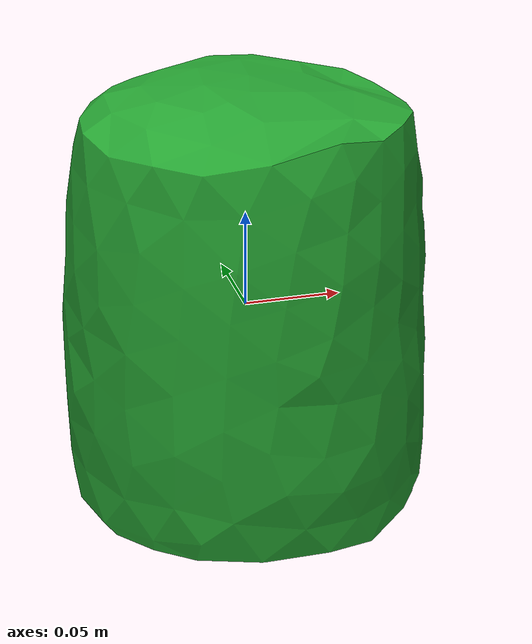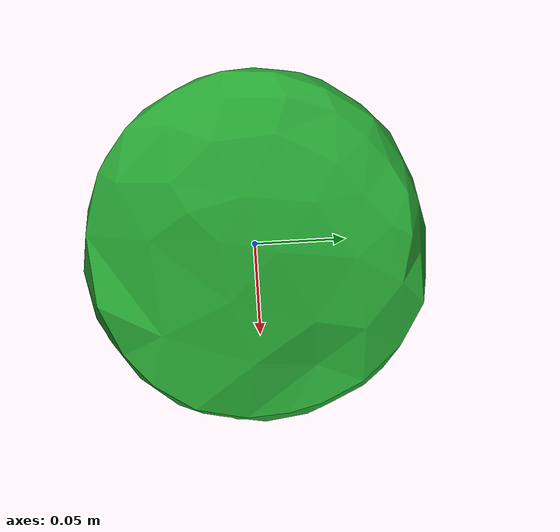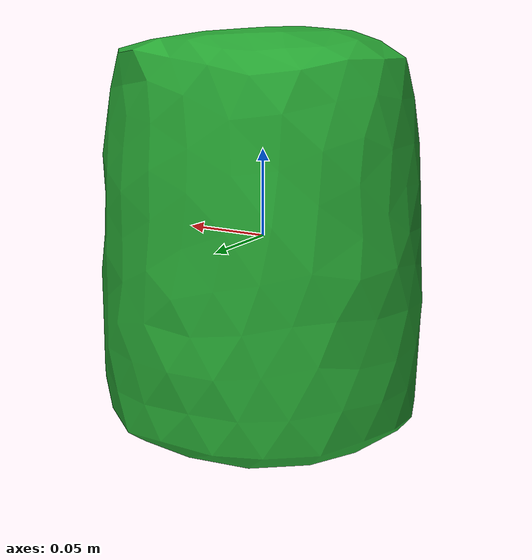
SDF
<?xml version="1.0" ?><sdf version="1.5"><model name="maisels-barrel-centered">
<link name="link">
<pose>0 0 0 0 0 0</pose>
<inertial>
<pose>0 0 -3.72529e-09 0 0 0</pose>
<mass>0.535</mass>
<inertia>
<ixx>0.00394764</ixx>
<ixy>0</ixy><iyy>0.00400731</iyy>
<ixz>0</ixz><iyz>0</iyz><izz>0.00303729</izz>
</inertia>
</inertial>
<visual name="visual">
<pose>0 0 0 0 0 0</pose>
<geometry><mesh><uri>model://maisels-barrel-centered/meshes/maisels-barrel-centered.dae</uri></mesh></geometry>
<material><script><uri>file://media/materials/scripts/gazebo.material</uri><name>Gazebo/GreenGlow</name></script></material></visual>
<collision name="collision"><pose>0 0 0 0 0 0</pose><geometry><mesh><uri>model://maisels-barrel-centered/meshes/maisels-barrel-centered.dae</uri></mesh></geometry>
<surface><friction><ode><mu>1.000000</mu><mu2>1.000000</mu2></ode></friction></surface>
</collision></link></model></sdf>
